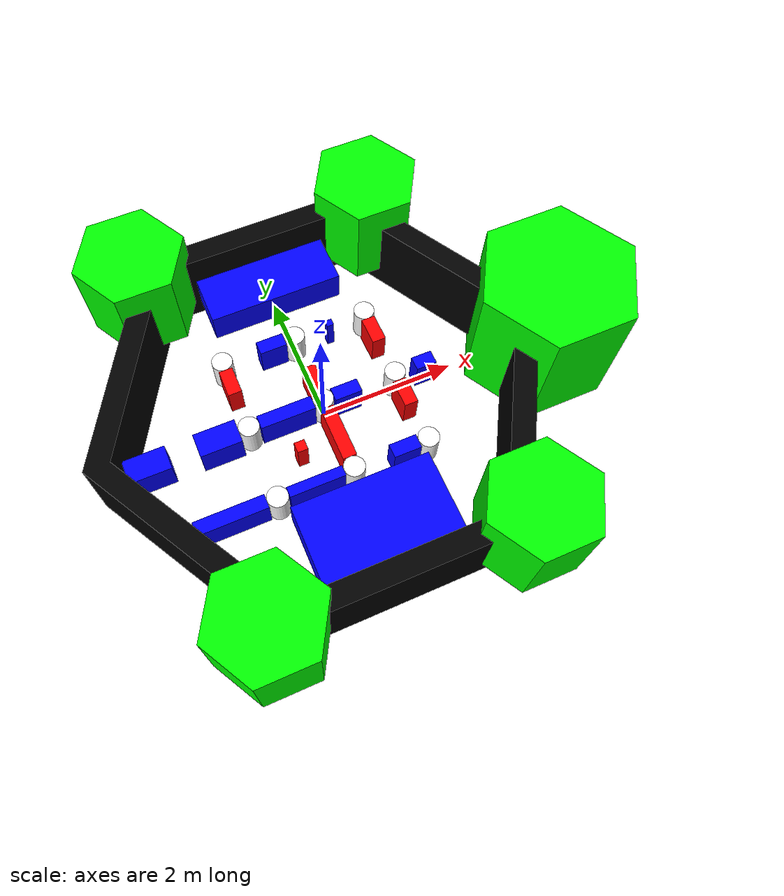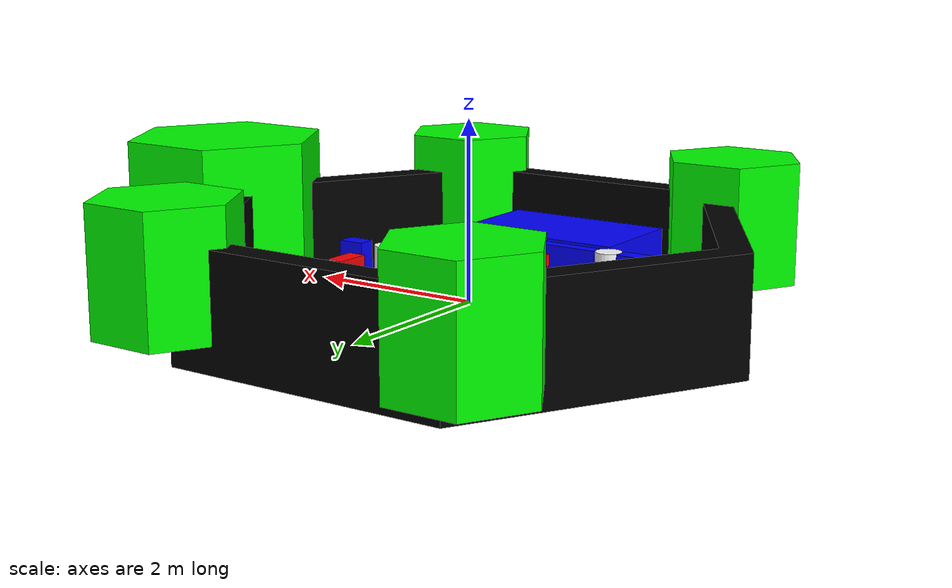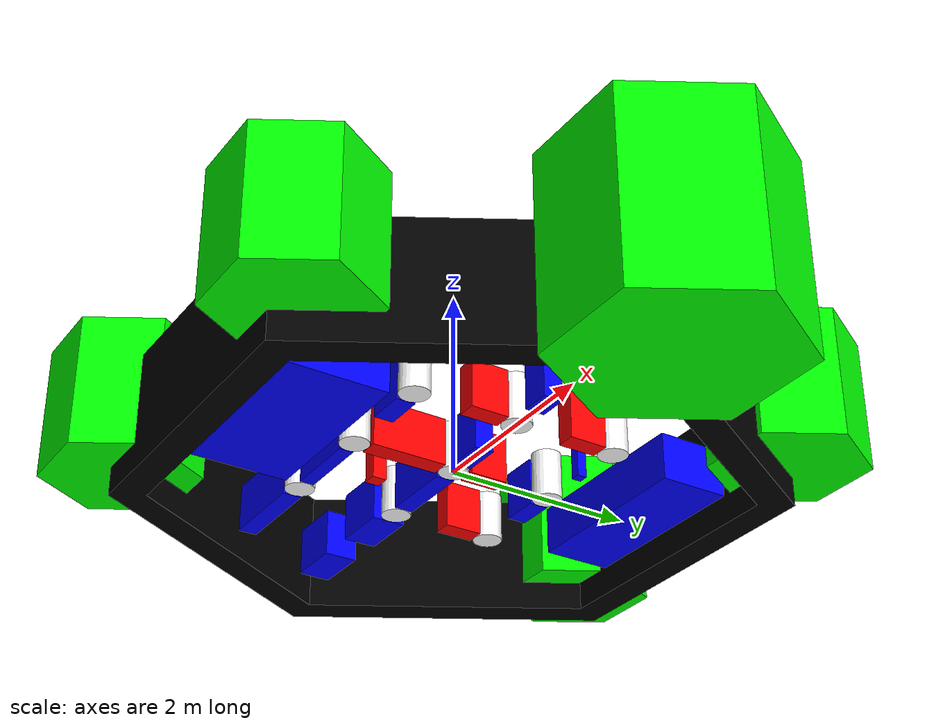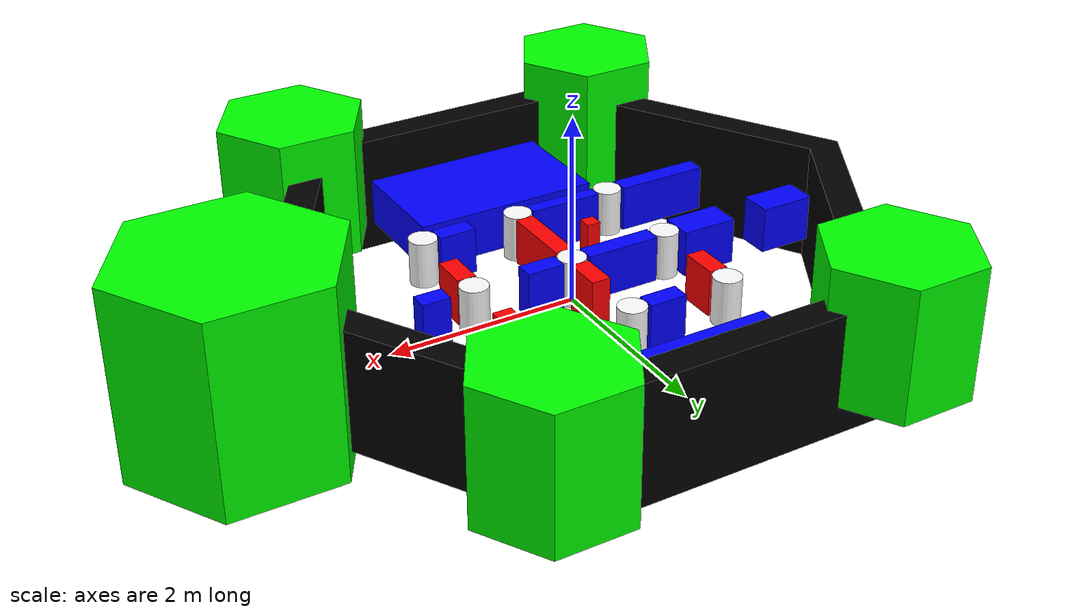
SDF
<?xml version="1.0" ?>
<sdf version="1.5">
    <model name='ros_symbol'>
      <static>1</static>
      <link name='symbol'>
        <collision name='one_one'>
          <pose>-1.1 -1.1 0.25 0 0 0</pose>
          <geometry>
            <cylinder>
              <radius>0.15</radius>
              <length>0.5</length>
            </cylinder>
          </geometry>
          <max_contacts>10</max_contacts>
          <surface>
            <bounce/>
            <friction>
              <ode/>
            </friction>
            <contact>
              <ode/>
            </contact>
          </surface>
        </collision>

        <visual name='one_one'>
          <pose>-1.1 -1.1 0.25 0 0 0</pose>
          <geometry>
            <cylinder>
              <radius>0.15</radius>
              <length>0.5</length>
            </cylinder>
          </geometry>
          <material>
            <ambient>1 1 1 1</ambient>
            <diffuse>1 1 1 1</diffuse>
            <specular>0.2 0.2 0.2 1</specular>
            <emissive>0 0 0 1</emissive>
          </material>
        </visual>

        <collision name='wall_long_right'>
          <pose>0.0 -1.95 0.25 0 0 0</pose>
          <geometry><box><size>2.0 1.3 0.5</size></box></geometry>
        </collision>
        <visual name='wall_long_right'>
          <pose>0.0 -1.95 0.25 0 0 0</pose>
          <geometry><box><size>2.0 1.3 0.5</size></box></geometry>
          <material><ambient>0 0 1 1</ambient><diffuse>0 0 1 1</diffuse></material>
        </visual>

        <collision name='wall_long_left'>
          <pose>0.0 2.2 0.25 0 0 0</pose>
          <geometry><box><size>2.0 0.8 0.5</size></box></geometry>
        </collision>
        <visual name='wall_long_left'>
          <pose>0.0 2.2 0.25 0 0 0</pose>
          <geometry><box><size>2.0 0.8 0.5</size></box></geometry>
          <material><ambient>0 0 1 1</ambient><diffuse>0 0 1 1</diffuse></material>
        </visual>

        <collision name='wall_bottom_mid_1'>
          <pose> -1.55 0.0 0.25 0 0 0</pose>
          <geometry><box><size>0.6 0.35 0.5</size></box></geometry>
        </collision>
        <visual name='wall_bottom_mid_1'>
          <pose>-1.55 0.0 0.25 0 0 0</pose>
          <geometry><box><size>0.6 0.35 0.5</size></box></geometry>
          <material><ambient>0 0 1 1</ambient><diffuse>0 0 1 1</diffuse></material>
        </visual>

        <collision name='wall_bottom_mid_2'>
          <pose> -2.55 0.0 0.25 0 0 0</pose>
          <geometry><box><size>0.6 0.35 0.5</size></box></geometry>
        </collision>
        <visual name='wall_bottom_mid_2'>
          <pose>-2.55 0.0 0.25 0 0 0</pose>
          <geometry><box><size>0.6 0.35 0.5</size></box></geometry>
          <material><ambient>0 0 1 1</ambient><diffuse>0 0 1 1</diffuse></material>
        </visual>

        <!--   EXTRA WALLS BETWEEN PILLARS -->

        <!-- Horizontal walls (blue) -->
        <!-- Row 1: y = 1.1 -->
        <collision name='wall_r1_left_mid'>
          <pose>-0.35 1.1 0.25 0 0 0</pose>
          <geometry><box><size>0.40 0.2 0.5</size></box></geometry>
        </collision>
        <visual name='wall_r1_left_mid'>
          <pose>-0.35 1.1 0.25 0 0 0</pose>
          <geometry><box><size>0.40 0.2 0.5</size></box></geometry>
          <material><ambient>0 0 1 1</ambient><diffuse>0 0 1 1</diffuse></material>
        </visual>

        <collision name='wall_r1_mid_right'>
          <pose>0.55 1.1 0.25 0 0 0</pose>
          <geometry><box><size>0.15 0.15 0.5</size></box></geometry>
        </collision>
        <visual name='wall_r1_mid_right'>
          <pose>0.55 1.1 0.25 0 0 0</pose>
          <geometry><box><size>0.1 0.1 0.5</size></box></geometry>
          <material><ambient>0 0 1 1</ambient><diffuse>0 0 1 1</diffuse></material>
        </visual>

        <!-- Row 2: y = 0 -->
        <collision name='wall_r2_left_mid'>
          <pose>-0.55 0 0.25 0 0 0</pose>
          <geometry><box><size>0.8 0.2 0.5</size></box></geometry>
        </collision>
        <visual name='wall_r2_left_mid'>
          <pose>-0.55 0 0.25 0 0 0</pose>
          <geometry><box><size>0.8 0.2 0.5</size></box></geometry>
          <material><ambient>0 0 1 1</ambient><diffuse>0 0 1 1</diffuse></material>
        </visual>

        <collision name='wall_r2_left_top'>
          <pose>1.55 0 0.25 0 0 0</pose>
          <geometry><box><size>0.3 0.2 0.5</size></box></geometry>
        </collision>
        <visual name='wall_r2_left_top'>
          <pose>1.55 0 0.25 0 0 0</pose>
          <geometry><box><size>0.3 0.2 0.5</size></box></geometry>
          <material><ambient>0 0 1 1</ambient><diffuse>0 0 1 1</diffuse></material>
        </visual>

        <collision name='wall_r2_mid_right'>
          <pose>0.35 0 0.25 0 0 0</pose>
          <geometry><box><size>0.40 0.2 0.5</size></box></geometry>
        </collision>
        <visual name='wall_r2_mid_right'>
          <pose>0.35 0 0.25 0 0 0</pose>
          <geometry><box><size>0.40 0.2 0.5</size></box></geometry>
          <material><ambient>0 0 1 1</ambient><diffuse>0 0 1 1</diffuse></material>
        </visual>

        <!-- Row 3: y = -1.1 -->
        <collision name='wall_r3_left_mid'>
          <pose>-0.55 -1.1 0.25 0 0 0</pose>
          <geometry><box><size>0.80 0.15 0.5</size></box></geometry>
        </collision>
        <visual name='wall_r3_left_mid'>
          <pose>-0.55 -1.1 0.25 0 0 0</pose>
          <geometry><box><size>0.80 0.15 0.5</size></box></geometry>
          <material><ambient>0 0 1 1</ambient><diffuse>0 0 1 1</diffuse></material>
        </visual>

        <collision name='wall_r3_mid_right'>
          <pose>0.75 -1.1 0.25 0 0 0</pose>
          <geometry><box><size>0.40 0.2 0.5</size></box></geometry>
        </collision>
        <visual name='wall_r3_mid_right'>
          <pose>0.75 -1.1 0.25 0 0 0</pose>
          <geometry><box><size>0.40 0.2 0.5</size></box></geometry>
          <material><ambient>0 0 1 1</ambient><diffuse>0 0 1 1</diffuse></material>
        </visual>

        <collision name='wall_r3_mid_bot'>
          <pose>-1.75 -1.1 0.25 0 0 0</pose>
          <geometry><box><size>1.0 0.2 0.5</size></box></geometry>
        </collision>
        <visual name='wall_r3_mid_bot'>
          <pose>-1.75 -1.1 0.25 0 0 0</pose>
          <geometry><box><size>1.0 0.2 0.5</size></box></geometry>
          <material><ambient>0 0 1 1</ambient><diffuse>0 0 1 1</diffuse></material>
        </visual>

        <!-- Vertical walls (red) -->
        <!-- Column 1: x = -1.1 -->
        <collision name='wall_c1_bot_mid'>
          <pose>-0.55 -0.55 0.25 0 0 1.5708</pose>
          <geometry><box><size>0.15 0.15 0.5</size></box></geometry>
        </collision>
        <visual name='wall_c1_bot_mid'>
          <pose>-0.55 -0.55 0.25 0 0 1.5708</pose>
          <geometry><box><size>0.15 0.15 0.5</size></box></geometry>
          <material><ambient>1 0 0 1</ambient><diffuse>1 0 0 1</diffuse></material>
        </visual>

        <collision name='wall_c1_mid_top'>
          <pose>-1.1 0.75 0.25 0 0 1.5708</pose>
          <geometry><box><size>0.4 0.2 0.5</size></box></geometry>
        </collision>
        <visual name='wall_c1_mid_top'>
          <pose>-1.1 0.75 0.25 0 0 1.5708</pose>
          <geometry><box><size>0.4 0.2 0.5</size></box></geometry>
          <material><ambient>1 0 0 1</ambient><diffuse>1 0 0 1</diffuse></material>
        </visual>

        <!-- Column 2: x = 0 -->
        <collision name='wall_c2_bot_mid'>
          <pose>0 -0.55 0.25 0 0 1.5708</pose>
          <geometry><box><size>0.8 0.2 0.5</size></box></geometry>
        </collision>
        <visual name='wall_c2_bot_mid'>
          <pose>0 -0.55 0.25 0 0 1.5708</pose>
          <geometry><box><size>0.8 0.2 0.5</size></box></geometry>
          <material><ambient>1 0 0 1</ambient><diffuse>1 0 0 1</diffuse></material>
        </visual>

        <collision name='wall_c2_mid_top'>
          <pose>0 0.35 0.25 0 0 1.5708</pose>
          <geometry><box><size>0.40 0.2 0.5</size></box></geometry>
        </collision>
        <visual name='wall_c2_mid_top'>
          <pose>0 0.35 0.25 0 0 1.5708</pose>
          <geometry><box><size>0.40 0.2 0.5</size></box></geometry>
          <material><ambient>1 0 0 1</ambient><diffuse>1 0 0 1</diffuse></material>
        </visual>

        <!-- Column 3: x = 1.1 -->
        <collision name='wall_c3_bot_mid'>
          <pose>1.1 -0.35 0.25 0 0 1.5708</pose>
          <geometry><box><size>0.4 0.2 0.5</size></box></geometry>
        </collision>
        <visual name='wall_c3_bot_mid'>
          <pose>1.1 -0.35 0.25 0 0 1.5708</pose>
          <geometry><box><size>0.4 0.2 0.5</size></box></geometry>
          <material><ambient>1 0 0 1</ambient><diffuse>1 0 0 1</diffuse></material>
        </visual>

        <collision name='wall_c3_mid_top'>
          <pose>1.1 0.75 0.25 0 0 1.5708</pose>
          <geometry><box><size>0.4 0.2 0.5</size></box></geometry>
        </collision>
        <visual name='wall_c3_mid_top'>
          <pose>1.1 0.75 0.25 0 0 1.5708</pose>
          <geometry><box><size>0.4 0.2 0.5</size></box></geometry>
          <material><ambient>1 0 0 1</ambient><diffuse>1 0 0 1</diffuse></material>
        </visual>

        <collision name='one_two'>
          <pose>-1.1 0 0.25 0 0 0</pose>
          <geometry>
            <cylinder>
              <radius>0.15</radius>
              <length>0.5</length>
            </cylinder>
          </geometry>
          <max_contacts>10</max_contacts>
          <surface>
            <bounce/>
            <friction>
              <ode/>
            </friction>
            <contact>
              <ode/>
            </contact>
          </surface>
        </collision>

        <visual name='one_two'>
          <pose>-1.1 0 0.25 0 0 0</pose>
          <geometry>
            <cylinder>
              <radius>0.15</radius>
              <length>0.5</length>
            </cylinder>
          </geometry>
          <material>
            <ambient>1 1 1 1</ambient>
            <diffuse>1 1 1 1</diffuse>
            <specular>0.2 0.2 0.2 1</specular>
            <emissive>0 0 0 1</emissive>
          </material>
        </visual>

        <collision name='one_three'>
          <pose>-1.1 1.1 0.25 0 0 0</pose>
          <geometry>
            <cylinder>
              <radius>0.15</radius>
              <length>0.5</length>
            </cylinder>
          </geometry>
          <max_contacts>10</max_contacts>
          <surface>
            <bounce/>
            <friction>
              <ode/>
            </friction>
            <contact>
              <ode/>
            </contact>
          </surface>
        </collision>

        <visual name='one_three'>
          <pose>-1.1 1.1 0.25 0 0 0</pose>
          <geometry>
            <cylinder>
              <radius>0.15</radius>
              <length>0.5</length>
            </cylinder>
          </geometry>
          <material>
            <ambient>1 1 1 1</ambient>
            <diffuse>1 1 1 1</diffuse>
            <specular>0.2 0.2 0.2 1</specular>
            <emissive>0 0 0 1</emissive>
          </material>
        </visual>

        <collision name='two_one'>
          <pose>0 -1.1 0.25 0 0 0</pose>
          <geometry>
            <cylinder>
              <radius>0.15</radius>
              <length>0.5</length>
            </cylinder>
          </geometry>
          <max_contacts>10</max_contacts>
          <surface>
            <bounce/>
            <friction>
              <ode/>
            </friction>
            <contact>
              <ode/>
            </contact>
          </surface>
        </collision>

        <visual name='two_one'>
          <pose>0 -1.1 0.25 0 0 0</pose>
          <geometry>
            <cylinder>
              <radius>0.15</radius>
              <length>0.5</length>
            </cylinder>
          </geometry>
          <material>
            <ambient>1 1 1 1</ambient>
            <diffuse>1 1 1 1</diffuse>
            <specular>0.2 0.2 0.2 1</specular>
            <emissive>0 0 0 1</emissive>
          </material>
        </visual>

        <collision name='two_two'>
          <pose>0 0 0.25 0 0 0</pose>
          <geometry>
            <cylinder>
              <radius>0.15</radius>
              <length>0.5</length>
            </cylinder>
          </geometry>
          <max_contacts>10</max_contacts>
          <surface>
            <bounce/>
            <friction>
              <ode/>
            </friction>
            <contact>
              <ode/>
            </contact>
          </surface>
        </collision>

        <visual name='two_two'>
          <pose>0 0 0.25 0 0 0</pose>
          <geometry>
            <cylinder>
              <radius>0.15</radius>
              <length>0.5</length>
            </cylinder>
          </geometry>
          <material>
            <ambient>1 1 1 1</ambient>
            <diffuse>1 1 1 1</diffuse>
            <specular>0.2 0.2 0.2 1</specular>
            <emissive>0 0 0 1</emissive>
          </material>
        </visual>

        <collision name='two_three'>
          <pose>0 1.1 0.25 0 0 0</pose>
          <geometry>
            <cylinder>
              <radius>0.15</radius>
              <length>0.5</length>
            </cylinder>
          </geometry>
          <max_contacts>10</max_contacts>
          <surface>
            <bounce/>
            <friction>
              <ode/>
            </friction>
            <contact>
              <ode/>
            </contact>
          </surface>
        </collision>

        <visual name='two_three'>
          <pose>0 1.1 0.25 0 0 0</pose>
          <geometry>
            <cylinder>
              <radius>0.15</radius>
              <length>0.5</length>
            </cylinder>
          </geometry>
          <material>
            <ambient>1 1 1 1</ambient>
            <diffuse>1 1 1 1</diffuse>
            <specular>0.2 0.2 0.2 1</specular>
            <emissive>0 0 0 1</emissive>
          </material>
        </visual>

        <collision name='three_one'>
          <pose>1.1 -1.1 0.25 0 0 0</pose>
          <geometry>
            <cylinder>
              <radius>0.15</radius>
              <length>0.5</length>
            </cylinder>
          </geometry>
          <max_contacts>10</max_contacts>
          <surface>
            <bounce/>
            <friction>
              <ode/>
            </friction>
            <contact>
              <ode/>
            </contact>
          </surface>
        </collision>

        <visual name='three_one'>
          <pose>1.1 -1.1 0.25 0 0 0</pose>
          <geometry>
            <cylinder>
              <radius>0.15</radius>
              <length>0.5</length>
            </cylinder>
          </geometry>
          <material>
            <ambient>1 1 1 1</ambient>
            <diffuse>1 1 1 1</diffuse>
            <specular>0.2 0.2 0.2 1</specular>
            <emissive>0 0 0 1</emissive>
          </material>
        </visual>

        <collision name='three_two'>
          <pose>1.1 0 0.25 0 0 0</pose>
          <geometry>
            <cylinder>
              <radius>0.15</radius>
              <length>0.5</length>
            </cylinder>
          </geometry>
          <max_contacts>10</max_contacts>
          <surface>
            <bounce/>
            <friction>
              <ode/>
            </friction>
            <contact>
              <ode/>
            </contact>
          </surface>
        </collision>

        <visual name='three_two'>
          <pose>1.1 0 0.25 0 0 0</pose>
          <geometry>
            <cylinder>
              <radius>0.15</radius>
              <length>0.5</length>
            </cylinder>
          </geometry>
          <material>
            <ambient>1 1 1 1</ambient>
            <diffuse>1 1 1 1</diffuse>
            <specular>0.2 0.2 0.2 1</specular>
            <emissive>0 0 0 1</emissive>
          </material>
        </visual>

        <collision name='three_three'>
          <pose>1.1 1.1 0.25 0 0 0</pose>
          <geometry>
            <cylinder>
              <radius>0.15</radius>
              <length>0.5</length>
            </cylinder>
          </geometry>
          <max_contacts>10</max_contacts>
          <surface>
            <bounce/>
            <friction>
              <ode/>
            </friction>
            <contact>
              <ode/>
            </contact>
          </surface>
        </collision>

        <visual name='three_three'>
          <pose>1.1 1.1 0.25 0 0 0</pose>
          <geometry>
            <cylinder>
              <radius>0.15</radius>
              <length>0.5</length>
            </cylinder>
          </geometry>
          <material>
            <ambient>1 1 1 1</ambient>
            <diffuse>1 1 1 1</diffuse>
            <specular>0.2 0.2 0.2 1</specular>
            <emissive>0 0 0 1</emissive>
          </material>
        </visual>

        <!-- Draw Hexagon -->
        <collision name='head'>
          <pose>3.5 0 -0.5 0 0 0</pose>
          <geometry>
            <mesh>
              <uri>model://turtlebot3_world/meshes/hexagon.dae</uri>
              <scale>0.8 0.8 0.8</scale>
            </mesh>
          </geometry>
          <max_contacts>10</max_contacts>
          <surface>
            <bounce/>
            <friction>
              <ode/>
            </friction>
            <contact>
              <ode/>
            </contact>
          </surface>
        </collision>

        <visual name='head'>
          <pose>3.5 0 -0.5 0 0 0</pose>
          <geometry>
            <mesh>
              <uri>model://turtlebot3_world/meshes/hexagon.dae</uri>
              <scale>0.8 0.8 0.8</scale>
            </mesh>
          </geometry>
          <material>
            <ambient>0 1 0 1</ambient>
            <diffuse>0 1 0 1</diffuse>
            <specular>0.2 0.2 0.2 1</specular>
            <emissive>0 0 0 1</emissive>
          </material>
        </visual>

        <collision name='left_hand'>
          <pose>1.8 2.7 0 0 0 0</pose>
          <geometry>
            <mesh>
              <uri>model://turtlebot3_world/meshes/hexagon.dae</uri>
              <scale>0.55 0.55 0.55</scale>
            </mesh>
          </geometry>
          <max_contacts>10</max_contacts>
          <surface>
            <bounce/>
            <friction>
              <ode/>
            </friction>
            <contact>
              <ode/>
            </contact>
          </surface>
        </collision>

        <visual name='left_hand'>
          <pose>1.8 2.7 0 0 0 0</pose>
          <geometry>
            <mesh>
              <uri>model://turtlebot3_world/meshes/hexagon.dae</uri>
              <scale>0.55 0.55 0.55</scale>
            </mesh>
          </geometry>
          <material>
            <ambient>0 1 0 1</ambient>
            <diffuse>0 1 0 1</diffuse>
            <specular>0.2 0.2 0.2 1</specular>
            <emissive>0 0 0 1</emissive>
          </material>
        </visual>

        <collision name='right_hand'>
          <pose>1.8 -2.7 0 0 0 0</pose>
          <geometry>
            <mesh>
              <uri>model://turtlebot3_world/meshes/hexagon.dae</uri>
              <scale>0.55 0.55 0.55</scale>
            </mesh>
          </geometry>
          <max_contacts>10</max_contacts>
          <surface>
            <bounce/>
            <friction>
              <ode/>
            </friction>
            <contact>
              <ode/>
            </contact>
          </surface>
        </collision>

        <visual name='right_hand'>
          <pose>1.8 -2.7 0 0 0 0</pose>
          <geometry>
            <mesh>
              <uri>model://turtlebot3_world/meshes/hexagon.dae</uri>
              <scale>0.55 0.55 0.55</scale>
            </mesh>
          </geometry>
          <material>
            <ambient>0 1 0 1</ambient>
            <diffuse>0 1 0 1</diffuse>
            <specular>0.2 0.2 0.2 1</specular>
            <emissive>0 0 0 1</emissive>
          </material>
        </visual>

        <collision name='left_foot'>
          <pose>-1.8 2.7 0 0 0 0</pose>
          <geometry>
            <mesh>
              <uri>model://turtlebot3_world/meshes/hexagon.dae</uri>
              <scale>0.55 0.55 0.55</scale>
            </mesh>
          </geometry>
          <max_contacts>10</max_contacts>
          <surface>
            <bounce/>
            <friction>
              <ode/>
            </friction>
            <contact>
              <ode/>
            </contact>
          </surface>
        </collision>

        <visual name='left_foot'>
          <pose>-1.8 2.7 0 0 0 0</pose>
          <geometry>
            <mesh>
              <uri>model://turtlebot3_world/meshes/hexagon.dae</uri>
              <scale>0.55 0.55 0.55</scale>
            </mesh>
          </geometry>
          <material>
            <ambient>0 1 0 1</ambient>
            <diffuse>0 1 0 1</diffuse>
            <specular>0.2 0.2 0.2 1</specular>
            <emissive>0 0 0 1</emissive>
          </material>
        </visual>

        <collision name='right_foot'>
          <pose>-1.8 -2.7 0 0 0 0</pose>
          <geometry>
            <mesh>
              <uri>model://turtlebot3_world/meshes/hexagon.dae</uri>
              <scale>0.55 0.55 0.55</scale>
            </mesh>
          </geometry>
          <max_contacts>10</max_contacts>
          <surface>
            <bounce/>
            <friction>
              <ode/>
            </friction>
            <contact>
              <ode/>
            </contact>
          </surface>
        </collision>

        <visual name='right_foot'>
          <pose>-1.8 -2.7 0 0 0 0</pose>
          <geometry>
            <mesh>
              <uri>model://turtlebot3_world/meshes/hexagon.dae</uri>
              <scale>0.55 0.55 0.55</scale>
            </mesh>
          </geometry>
          <material>
            <ambient>0 1 0 1</ambient>
            <diffuse>0 1 0 1</diffuse>
            <specular>0.2 0.2 0.2 1</specular>
            <emissive>0 0 0 1</emissive>
          </material>
        </visual>

        <!-- Draw Wall -->
        <collision name='body'>
        <pose>0 0 -0.3 0 0 -1.5708</pose>
        <geometry>
          <mesh>
            <uri>model://turtlebot3_world/meshes/wall.dae</uri>
            <scale>0.25 0.25 0.25</scale>
          </mesh>
        </geometry>
        <max_contacts>10</max_contacts>
        <surface>
          <bounce/>
          <friction>
            <ode/>
          </friction>
          <contact>
            <ode/>
          </contact>
        </surface>
      </collision>

      <visual name='body'>
        <pose>0 0 -0.3 0 0 -1.5708</pose>
        <geometry>
          <mesh>
            <uri>model://turtlebot3_world/meshes/wall.dae</uri>
            <scale>0.25 0.25 0.25</scale>
          </mesh>
        </geometry>
        <material>
          <ambient>0 0 0 1</ambient>
          <diffuse>0 0 0 1</diffuse>
          <specular>0 0 0 1</specular>
          <emissive>0 0 0 1</emissive>
        </material>
      </visual>
    </link>
  </model>
</sdf>
